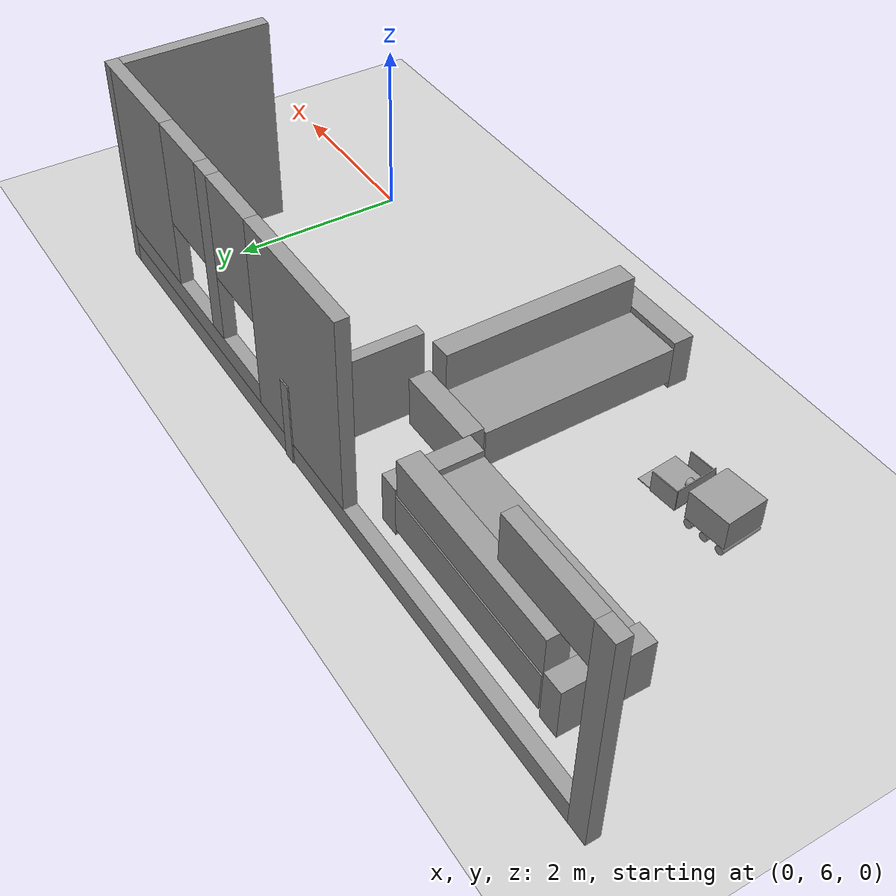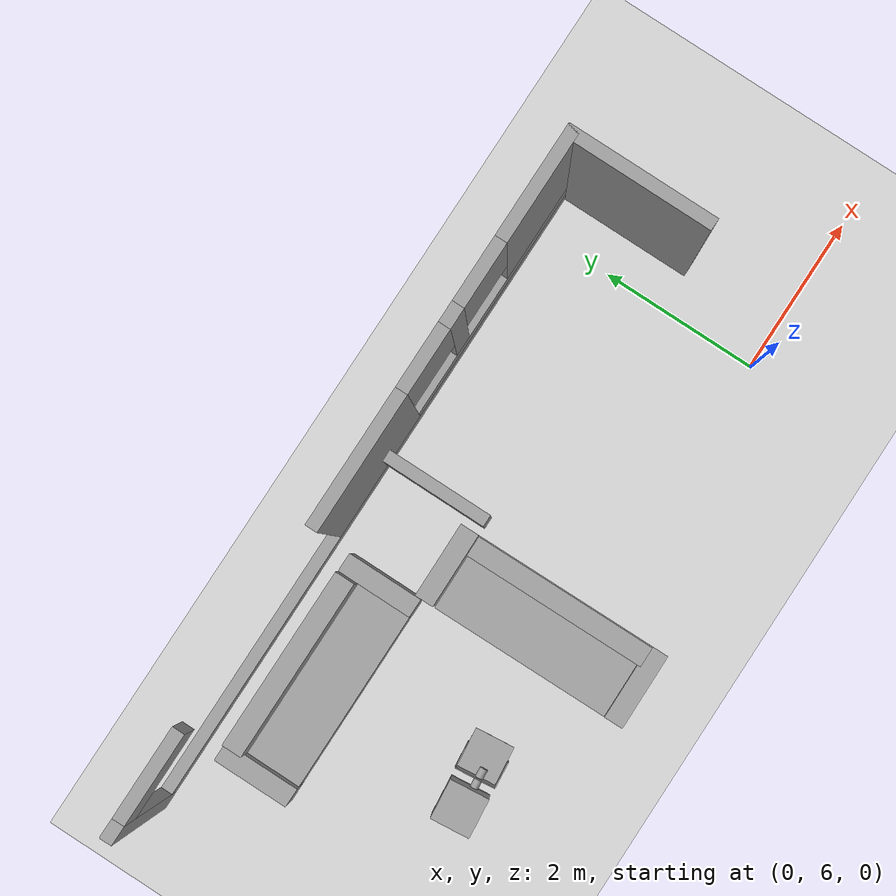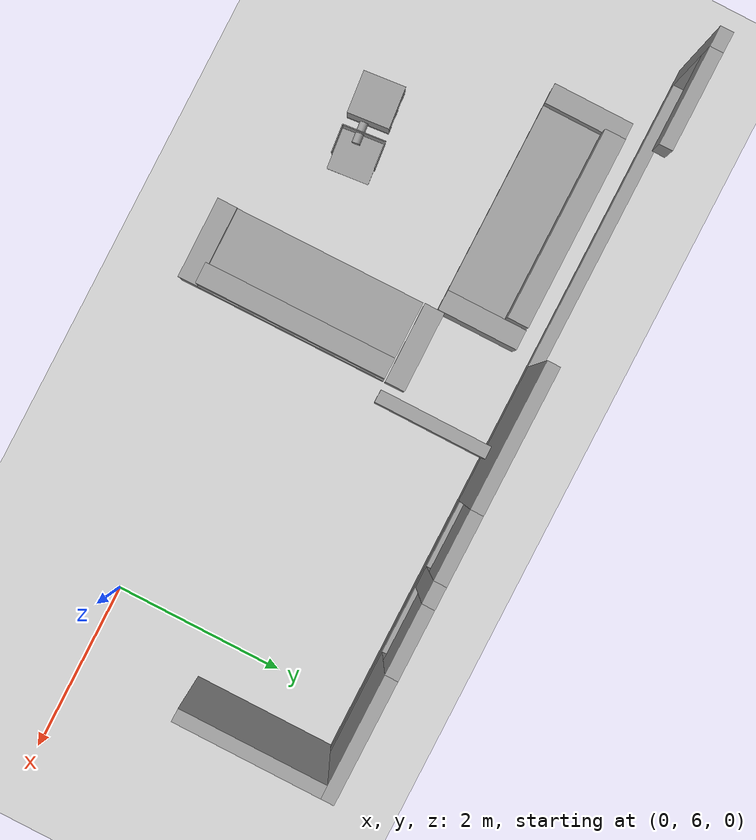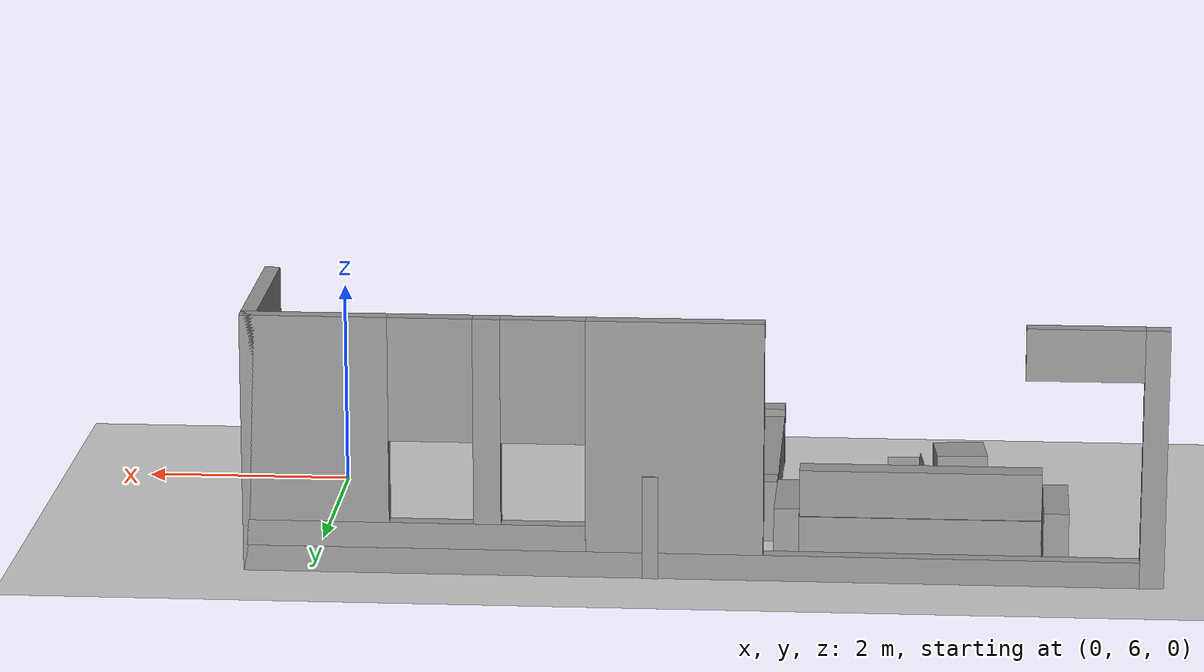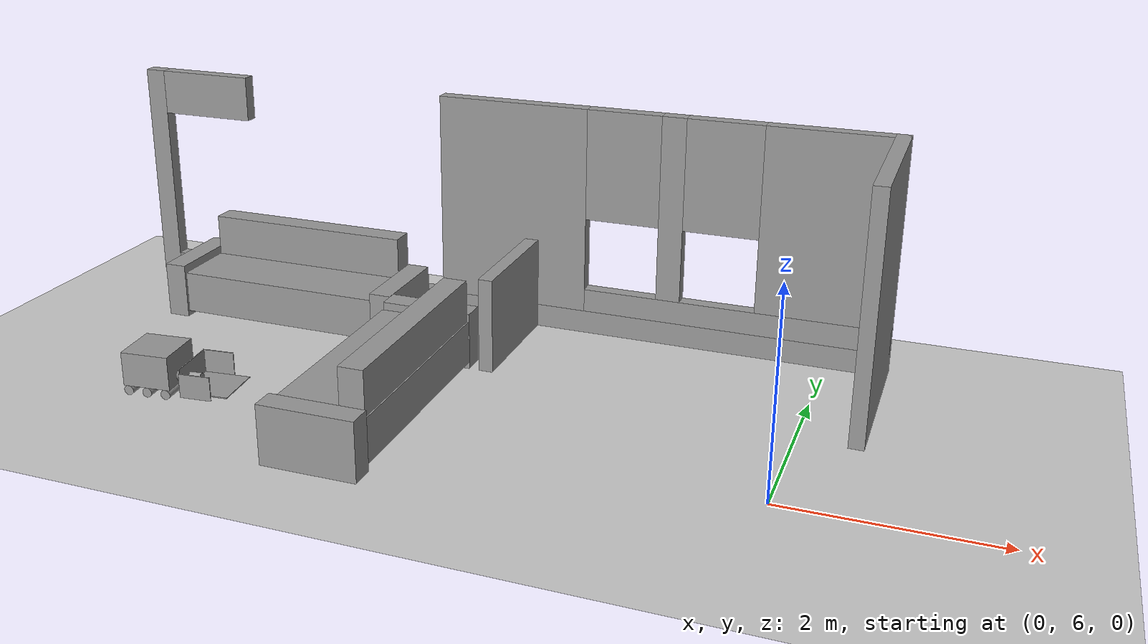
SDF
<sdf version="1.6">
 <world name="default">
  <model name="ground_plane">
   <static>1</static>
   <link name="link">
    <collision name="collision">
     <geometry><plane><normal>0 0 1</normal><size>100 100</size></plane></geometry>
     <surface><friction><ode><mu>100</mu><mu2>50</mu2></ode></friction></surface>
    </collision>
    <visual name="visual">
     <cast_shadows>0</cast_shadows>
     <geometry><plane><normal>0 0 1</normal><size>100 100</size></plane></geometry>
     <material>
      <script><uri>file://media/materials/scripts/gazebo.material</uri><name>Gazebo/Grey</name></script>
     </material>
    </visual>
   </link>
  </model>
  <model name="MDP-Home">
   <pose>0.766606 1.22436 0 0 -0 0</pose>
   <link name="Wall_15">
    <pose>-4.47995 7.76656 0 0 -0 0</pose>
    <visual name="Wall_15_Visual_0">
     <pose>-4.22794 0 1.25 0 -0 0</pose>
     <geometry><box><size>0.231123 0.15 2.5</size></box></geometry>
     <material>
      <script><uri>file://media/materials/scripts/gazebo.material</uri><name>Gazebo/Grey</name></script>
      <ambient>1 1 1 1</ambient>
     </material>
     <meta><layer>0</layer></meta>
    </visual>
    <collision name="Wall_15_Collision_0">
     <geometry><box><size>0.231123 0.15 2.5</size></box></geometry>
     <pose>-4.22794 0 1.25 0 -0 0</pose>
    </collision>
    <visual name="Wall_15_Visual_1">
     <pose>0.115562 0 0.125 0 -0 0</pose>
     <geometry><box><size>8.45588 0.15 0.25</size></box></geometry>
     <material>
      <script><uri>file://media/materials/scripts/gazebo.material</uri><name>Gazebo/Grey</name></script>
      <ambient>1 1 1 1</ambient>
     </material>
     <meta><layer>0</layer></meta>
    </visual>
    <collision name="Wall_15_Collision_1">
     <geometry><box><size>8.45588 0.15 0.25</size></box></geometry>
     <pose>0.115562 0 0.125 0 -0 0</pose>
    </collision>
    <visual name="Wall_15_Visual_2">
     <pose>0.254395 0 1.375 0 -0 0</pose>
     <geometry><box><size>1.67515 0.15 2.25</size></box></geometry>
     <material>
      <script><uri>file://media/materials/scripts/gazebo.material</uri><name>Gazebo/Grey</name></script>
      <ambient>1 1 1 1</ambient>
     </material>
     <meta><layer>0</layer></meta>
    </visual>
    <collision name="Wall_15_Collision_2">
     <geometry><box><size>1.67515 0.15 2.25</size></box></geometry>
     <pose>0.254395 0 1.375 0 -0 0</pose>
    </collision>
    <visual name="Wall_15_Visual_3">
     <pose>2.71774 0 0.375 0 -0 0</pose>
     <geometry><box><size>3.25153 0.15 0.25</size></box></geometry>
     <material>
      <script><uri>file://media/materials/scripts/gazebo.material</uri><name>Gazebo/Grey</name></script>
      <ambient>1 1 1 1</ambient>
     </material>
     <meta><layer>0</layer></meta>
    </visual>
    <collision name="Wall_15_Collision_3">
     <geometry><box><size>3.25153 0.15 0.25</size></box></geometry>
     <pose>2.71774 0 0.375 0 -0 0</pose>
    </collision>
    <visual name="Wall_15_Visual_4">
     <pose>2.02118 0 1.5 0 -0 0</pose>
     <geometry><box><size>0.258412 0.15 2</size></box></geometry>
     <material>
      <script><uri>file://media/materials/scripts/gazebo.material</uri><name>Gazebo/Grey</name></script>
      <ambient>1 1 1 1</ambient>
     </material>
     <meta><layer>0</layer></meta>
    </visual>
    <collision name="Wall_15_Collision_4">
     <geometry><box><size>0.258412 0.15 2</size></box></geometry>
     <pose>2.02118 0 1.5 0 -0 0</pose>
    </collision>
    <visual name="Wall_15_Visual_5">
     <pose>3.64694 0 1.5 0 -0 0</pose>
     <geometry><box><size>1.39312 0.15 2</size></box></geometry>
     <material>
      <script><uri>file://media/materials/scripts/gazebo.material</uri><name>Gazebo/Grey</name></script>
      <ambient>1 1 1 1</ambient>
     </material>
     <meta><layer>0</layer></meta>
    </visual>
    <collision name="Wall_15_Collision_5">
     <geometry><box><size>1.39312 0.15 2</size></box></geometry>
     <pose>3.64694 0 1.5 0 -0 0</pose>
    </collision>
    <visual name="Wall_15_Visual_6">
     <pose>1.49197 0 1.9 0 -0 0</pose>
     <geometry><box><size>0.8 0.15 1.2</size></box></geometry>
     <material>
      <script><uri>file://media/materials/scripts/gazebo.material</uri><name>Gazebo/Grey</name></script>
      <ambient>1 1 1 1</ambient>
     </material>
     <meta><layer>0</layer></meta>
    </visual>
    <collision name="Wall_15_Collision_6">
     <geometry><box><size>0.8 0.15 1.2</size></box></geometry>
     <pose>1.49197 0 1.9 0 -0 0</pose>
    </collision>
    <visual name="Wall_15_Visual_7">
     <pose>2.55038 0 1.9 0 -0 0</pose>
     <geometry><box><size>0.8 0.15 1.2</size></box></geometry>
     <material>
      <script><uri>file://media/materials/scripts/gazebo.material</uri><name>Gazebo/Grey</name></script>
      <ambient>1 1 1 1</ambient>
     </material>
     <meta><layer>0</layer></meta>
    </visual>
    <collision name="Wall_15_Collision_7">
     <geometry><box><size>0.8 0.15 1.2</size></box></geometry>
     <pose>2.55038 0 1.9 0 -0 0</pose>
    </collision>
    <visual name="Wall_15_Visual_8">
     <pose>-3.56212 0 2.25 0 -0 0</pose>
     <geometry><box><size>1.10051 0.15 0.5</size></box></geometry>
     <material>
      <script><uri>file://media/materials/scripts/gazebo.material</uri><name>Gazebo/Grey</name></script>
      <ambient>1 1 1 1</ambient>
     </material>
     <meta><layer>0</layer></meta>
    </visual>
    <collision name="Wall_15_Collision_8">
     <geometry><box><size>1.10051 0.15 0.5</size></box></geometry>
     <pose>-3.56212 0 2.25 0 -0 0</pose>
    </collision>
   </link>
   <link name="Wall_158">
    <collision name="Wall_158_Collision">
     <geometry><box><size>1.5 0.15 1</size></box></geometry>
     <pose>0 0 0.5 0 -0 0</pose>
    </collision>
    <visual name="Wall_158_Visual">
     <pose>0 0 0.5 0 -0 0</pose>
     <geometry><box><size>1.5 0.15 1</size></box></geometry>
     <material>
      <script><uri>file://media/materials/scripts/gazebo.material</uri><name>Gazebo/Grey</name></script>
      <ambient>1 1 1 1</ambient>
     </material>
     <meta><layer>0</layer></meta>
    </visual>
    <pose>-3.99789 7.10564 0 0 0 -1.5708</pose>
   </link>
   <link name="Wall_17">
    <collision name="Wall_17_Collision">
     <geometry><box><size>1.829 0.15 2.5</size></box></geometry>
     <pose>0 0 1.25 0 -0 0</pose>
    </collision>
    <visual name="Wall_17_Visual">
     <pose>0 0 1.25 0 -0 0</pose>
     <geometry><box><size>1.829 0.15 2.5</size></box></geometry>
     <material>
      <script><uri>file://media/materials/scripts/gazebo.material</uri><name>Gazebo/Grey</name></script>
      <ambient>1 1 1 1</ambient>
     </material>
     <meta><layer>0</layer></meta>
    </visual>
    <pose>-0.211449 6.92706 0 0 0 -1.5708</pose>
   </link>
   <static>1</static>
  </model>
  <model name="Couch_0">
   <link name="link_0">
    <pose>0.005 -0.08565 -0.1125 0 -0 0</pose>
    <inertial>
     <mass>1</mass>
     <inertia>
      <ixx>0.166667</ixx>
      <ixy>0</ixy>
      <ixz>0</ixz>
      <iyy>0.166667</iyy>
      <iyz>0</iyz>
      <izz>0.166667</izz>
     </inertia>
    </inertial>
    <visual name="visual">
     <geometry><box><size>2.286 0.9652 0.45</size></box></geometry>
     <material>
      <lighting>1</lighting>
      <script><uri>file://media/materials/scripts/gazebo.material</uri><name>Gazebo/Grey</name></script>
      <shader type="pixel"><normal_map>__default__</normal_map></shader>
      <ambient>0.3 0.3 0.3 1</ambient>
      <diffuse>0.7 0.7 0.7 1</diffuse>
      <specular>0.01 0.01 0.01 1</specular>
      <emissive>0 0 0 1</emissive>
     </material>
    </visual>
    <collision name="collision">
     <geometry><box><size>2.286 0.9652 0.45</size></box></geometry>
     <surface>
      <friction>
       <ode><mu>1</mu><mu2>1</mu2><fdir1>0 0 0</fdir1><slip1>0</slip1><slip2>0</slip2></ode>
       <torsional>
        <coefficient>1</coefficient>
        <patch_radius>0</patch_radius>
        <surface_radius>0</surface_radius>
        <use_patch_radius>1</use_patch_radius>
        <ode><slip>0</slip></ode>
       </torsional>
      </friction>
      <bounce><restitution_coefficient>0</restitution_coefficient><threshold>1e+06</threshold></bounce>
      <contact>
       <collide_without_contact>0</collide_without_contact>
       <collide_without_contact_bitmask>1</collide_without_contact_bitmask>
       <collide_bitmask>1</collide_bitmask>
       <ode>
        <soft_cfm>0</soft_cfm>
        <soft_erp>0.2</soft_erp>
        <kp>1e+13</kp>
        <kd>1</kd>
        <max_vel>0.01</max_vel>
        <min_depth>0</min_depth>
       </ode>
       <bullet>
        <split_impulse>1</split_impulse>
        <split_impulse_penetration_threshold>-0.01</split_impulse_penetration_threshold>
        <soft_cfm>0</soft_cfm>
        <soft_erp>0.2</soft_erp>
        <kp>1e+13</kp>
        <kd>1</kd>
       </bullet>
      </contact>
     </surface>
    </collision>
   </link>
   <link name="link_1">
    <pose>-1.278 -0.08565 -0.1125 0 -0 0</pose>
    <inertial>
     <mass>1</mass>
     <inertia>
      <ixx>0.166667</ixx>
      <ixy>0</ixy>
      <ixz>0</ixz>
      <iyy>0.166667</iyy>
      <iyz>0</iyz>
      <izz>0.166667</izz>
     </inertia>
    </inertial>
    <visual name="visual">
     <geometry><box><size>0.24 0.9652 0.6</size></box></geometry>
     <material>
      <lighting>1</lighting>
      <script><uri>file://media/materials/scripts/gazebo.material</uri><name>Gazebo/Grey</name></script>
      <shader type="pixel"><normal_map>__default__</normal_map></shader>
      <ambient>0.3 0.3 0.3 1</ambient>
      <diffuse>0.7 0.7 0.7 1</diffuse>
      <specular>0.01 0.01 0.01 1</specular>
      <emissive>0 0 0 1</emissive>
     </material>
    </visual>
    <collision name="collision">
     <geometry><box><size>0.24 0.9652 0.6</size></box></geometry>
     <surface>
      <friction>
       <ode><mu>1</mu><mu2>1</mu2><fdir1>0 0 0</fdir1><slip1>0</slip1><slip2>0</slip2></ode>
       <torsional>
        <coefficient>1</coefficient>
        <patch_radius>0</patch_radius>
        <surface_radius>0</surface_radius>
        <use_patch_radius>1</use_patch_radius>
        <ode><slip>0</slip></ode>
       </torsional>
      </friction>
      <bounce><restitution_coefficient>0</restitution_coefficient><threshold>1e+06</threshold></bounce>
      <contact>
       <collide_without_contact>0</collide_without_contact>
       <collide_without_contact_bitmask>1</collide_without_contact_bitmask>
       <collide_bitmask>1</collide_bitmask>
       <ode>
        <soft_cfm>0</soft_cfm>
        <soft_erp>0.2</soft_erp>
        <kp>1e+13</kp>
        <kd>1</kd>
        <max_vel>0.01</max_vel>
        <min_depth>0</min_depth>
       </ode>
       <bullet>
        <split_impulse>1</split_impulse>
        <split_impulse_penetration_threshold>-0.01</split_impulse_penetration_threshold>
        <soft_cfm>0</soft_cfm>
        <soft_erp>0.2</soft_erp>
        <kp>1e+13</kp>
        <kd>1</kd>
       </bullet>
      </contact>
     </surface>
    </collision>
   </link>
   <link name="link_1_clone">
    <pose>1.268 -0.08565 -0.1125 0 -0 0</pose>
    <inertial>
     <mass>1</mass>
     <inertia>
      <ixx>0.166667</ixx>
      <ixy>0</ixy>
      <ixz>0</ixz>
      <iyy>0.166667</iyy>
      <iyz>0</iyz>
      <izz>0.166667</izz>
     </inertia>
    </inertial>
    <visual name="visual">
     <geometry><box><size>0.24 0.9652 0.6</size></box></geometry>
     <material>
      <lighting>1</lighting>
      <script><uri>file://media/materials/scripts/gazebo.material</uri><name>Gazebo/Grey</name></script>
      <shader type="pixel"><normal_map>__default__</normal_map></shader>
      <ambient>0.3 0.3 0.3 1</ambient>
      <diffuse>0.7 0.7 0.7 1</diffuse>
      <specular>0.01 0.01 0.01 1</specular>
      <emissive>0 0 0 1</emissive>
     </material>
    </visual>
    <collision name="collision">
     <geometry><box><size>0.24 0.9652 0.6</size></box></geometry>
     <surface>
      <friction>
       <ode><mu>1</mu><mu2>1</mu2><fdir1>0 0 0</fdir1><slip1>0</slip1><slip2>0</slip2></ode>
       <torsional>
        <coefficient>1</coefficient>
        <patch_radius>0</patch_radius>
        <surface_radius>0</surface_radius>
        <use_patch_radius>1</use_patch_radius>
        <ode><slip>0</slip></ode>
       </torsional>
      </friction>
      <bounce><restitution_coefficient>0</restitution_coefficient><threshold>1e+06</threshold></bounce>
      <contact>
       <collide_without_contact>0</collide_without_contact>
       <collide_without_contact_bitmask>1</collide_without_contact_bitmask>
       <collide_bitmask>1</collide_bitmask>
       <ode>
        <soft_cfm>0</soft_cfm>
        <soft_erp>0.2</soft_erp>
        <kp>1e+13</kp>
        <kd>1</kd>
        <max_vel>0.01</max_vel>
        <min_depth>0</min_depth>
       </ode>
       <bullet>
        <split_impulse>1</split_impulse>
        <split_impulse_penetration_threshold>-0.01</split_impulse_penetration_threshold>
        <soft_cfm>0</soft_cfm>
        <soft_erp>0.2</soft_erp>
        <kp>1e+13</kp>
        <kd>1</kd>
       </bullet>
      </contact>
     </surface>
    </collision>
   </link>
   <link name="link_2">
    <pose>0.005 0.25695 0.3375 0 -0 0</pose>
    <inertial>
     <mass>1</mass>
     <inertia>
      <ixx>0.166667</ixx>
      <ixy>0</ixy>
      <ixz>0</ixz>
      <iyy>0.166667</iyy>
      <iyz>0</iyz>
      <izz>0.166667</izz>
     </inertia>
    </inertial>
    <visual name="visual">
     <geometry><box><size>2.286 0.25 0.45</size></box></geometry>
     <material>
      <lighting>1</lighting>
      <script><uri>file://media/materials/scripts/gazebo.material</uri><name>Gazebo/Grey</name></script>
      <shader type="pixel"><normal_map>__default__</normal_map></shader>
      <ambient>0.3 0.3 0.3 1</ambient>
      <diffuse>0.7 0.7 0.7 1</diffuse>
      <specular>0.01 0.01 0.01 1</specular>
      <emissive>0 0 0 1</emissive>
     </material>
    </visual>
    <collision name="collision">
     <geometry><box><size>2.286 0.25 0.45</size></box></geometry>
     <surface>
      <friction>
       <ode><mu>1</mu><mu2>1</mu2><fdir1>0 0 0</fdir1><slip1>0</slip1><slip2>0</slip2></ode>
       <torsional>
        <coefficient>1</coefficient>
        <patch_radius>0</patch_radius>
        <surface_radius>0</surface_radius>
        <use_patch_radius>1</use_patch_radius>
        <ode><slip>0</slip></ode>
       </torsional>
      </friction>
      <bounce><restitution_coefficient>0</restitution_coefficient><threshold>1e+06</threshold></bounce>
      <contact>
       <collide_without_contact>0</collide_without_contact>
       <collide_without_contact_bitmask>1</collide_without_contact_bitmask>
       <collide_bitmask>1</collide_bitmask>
       <ode>
        <soft_cfm>0</soft_cfm>
        <soft_erp>0.2</soft_erp>
        <kp>1e+13</kp>
        <kd>1</kd>
        <max_vel>0.01</max_vel>
        <min_depth>0</min_depth>
       </ode>
       <bullet>
        <split_impulse>1</split_impulse>
        <split_impulse_penetration_threshold>-0.01</split_impulse_penetration_threshold>
        <soft_cfm>0</soft_cfm>
        <soft_erp>0.2</soft_erp>
        <kp>1e+13</kp>
        <kd>1</kd>
       </bullet>
      </contact>
     </surface>
    </collision>
   </link>
   <joint name="link_0_JOINT_0" type="revolute">
    <parent>link_0</parent>
    <child>link_1</child>
    <axis>
     <xyz>0 1 0</xyz>
     <use_parent_model_frame>0</use_parent_model_frame>
     <limit>
      <lower>-1.79769e+308</lower>
      <upper>1.79769e+308</upper>
      <effort>-1</effort>
      <velocity>-1</velocity>
     </limit>
     <dynamics>
      <spring_reference>0</spring_reference>
      <spring_stiffness>0</spring_stiffness>
      <damping>0</damping>
     </dynamics>
    </axis>
    <physics>
     <ode><limit><cfm>0</cfm><erp>0.2</erp></limit><suspension><cfm>0</cfm><erp>0.2</erp></suspension></ode>
    </physics>
   </joint>
   <joint name="link_0_JOINT_1" type="revolute">
    <parent>link_0</parent>
    <child>link_1_clone</child>
    <axis>
     <xyz>0 1 0</xyz>
     <use_parent_model_frame>0</use_parent_model_frame>
     <limit>
      <lower>-1.79769e+308</lower>
      <upper>1.79769e+308</upper>
      <effort>-1</effort>
      <velocity>-1</velocity>
     </limit>
     <dynamics>
      <spring_reference>0</spring_reference>
      <spring_stiffness>0</spring_stiffness>
      <damping>0</damping>
     </dynamics>
    </axis>
    <physics>
     <ode><limit><cfm>0</cfm><erp>0.2</erp></limit><suspension><cfm>0</cfm><erp>0.2</erp></suspension></ode>
    </physics>
   </joint>
   <joint name="link_0_JOINT_2" type="revolute">
    <parent>link_0</parent>
    <child>link_2</child>
    <axis>
     <xyz>1 0 0</xyz>
     <use_parent_model_frame>0</use_parent_model_frame>
     <limit>
      <lower>-1.79769e+308</lower>
      <upper>1.79769e+308</upper>
      <effort>-1</effort>
      <velocity>-1</velocity>
     </limit>
     <dynamics>
      <spring_reference>0</spring_reference>
      <spring_stiffness>0</spring_stiffness>
      <damping>0</damping>
     </dynamics>
    </axis>
    <physics>
     <ode><limit><cfm>0</cfm><erp>0.2</erp></limit><suspension><cfm>0</cfm><erp>0.2</erp></suspension></ode>
    </physics>
   </joint>
   <static>0</static>
   <pose>-5.76863 8.30056 0.4125 -2e-06 1e-06 0.000183</pose>
  </model>
  <model name="Couch_1">
   <link name="link_0">
    <pose>0.005 -0.08565 -0.1125 0 -0 0</pose>
    <inertial>
     <mass>1</mass>
     <inertia>
      <ixx>0.166667</ixx>
      <ixy>0</ixy>
      <ixz>0</ixz>
      <iyy>0.166667</iyy>
      <iyz>0</iyz>
      <izz>0.166667</izz>
     </inertia>
    </inertial>
    <visual name="visual">
     <geometry><box><size>2.286 0.9652 0.45</size></box></geometry>
     <material>
      <lighting>1</lighting>
      <script><uri>file://media/materials/scripts/gazebo.material</uri><name>Gazebo/Grey</name></script>
      <shader type="pixel"><normal_map>__default__</normal_map></shader>
      <ambient>0.3 0.3 0.3 1</ambient>
      <diffuse>0.7 0.7 0.7 1</diffuse>
      <specular>0.01 0.01 0.01 1</specular>
      <emissive>0 0 0 1</emissive>
     </material>
    </visual>
    <collision name="collision">
     <geometry><box><size>2.286 0.9652 0.45</size></box></geometry>
     <surface>
      <friction>
       <ode><mu>1</mu><mu2>1</mu2><fdir1>0 0 0</fdir1><slip1>0</slip1><slip2>0</slip2></ode>
       <torsional>
        <coefficient>1</coefficient>
        <patch_radius>0</patch_radius>
        <surface_radius>0</surface_radius>
        <use_patch_radius>1</use_patch_radius>
        <ode><slip>0</slip></ode>
       </torsional>
      </friction>
      <bounce><restitution_coefficient>0</restitution_coefficient><threshold>1e+06</threshold></bounce>
      <contact>
       <collide_without_contact>0</collide_without_contact>
       <collide_without_contact_bitmask>1</collide_without_contact_bitmask>
       <collide_bitmask>1</collide_bitmask>
       <ode>
        <soft_cfm>0</soft_cfm>
        <soft_erp>0.2</soft_erp>
        <kp>1e+13</kp>
        <kd>1</kd>
        <max_vel>0.01</max_vel>
        <min_depth>0</min_depth>
       </ode>
       <bullet>
        <split_impulse>1</split_impulse>
        <split_impulse_penetration_threshold>-0.01</split_impulse_penetration_threshold>
        <soft_cfm>0</soft_cfm>
        <soft_erp>0.2</soft_erp>
        <kp>1e+13</kp>
        <kd>1</kd>
       </bullet>
      </contact>
     </surface>
    </collision>
   </link>
   <link name="link_1">
    <pose>-1.278 -0.08565 -0.1125 0 -0 0</pose>
    <inertial>
     <mass>1</mass>
     <inertia>
      <ixx>0.166667</ixx>
      <ixy>0</ixy>
      <ixz>0</ixz>
      <iyy>0.166667</iyy>
      <iyz>0</iyz>
      <izz>0.166667</izz>
     </inertia>
    </inertial>
    <visual name="visual">
     <geometry><box><size>0.24 0.9652 0.6</size></box></geometry>
     <material>
      <lighting>1</lighting>
      <script><uri>file://media/materials/scripts/gazebo.material</uri><name>Gazebo/Grey</name></script>
      <shader type="pixel"><normal_map>__default__</normal_map></shader>
      <ambient>0.3 0.3 0.3 1</ambient>
      <diffuse>0.7 0.7 0.7 1</diffuse>
      <specular>0.01 0.01 0.01 1</specular>
      <emissive>0 0 0 1</emissive>
     </material>
    </visual>
    <collision name="collision">
     <geometry><box><size>0.24 0.9652 0.6</size></box></geometry>
     <surface>
      <friction>
       <ode><mu>1</mu><mu2>1</mu2><fdir1>0 0 0</fdir1><slip1>0</slip1><slip2>0</slip2></ode>
       <torsional>
        <coefficient>1</coefficient>
        <patch_radius>0</patch_radius>
        <surface_radius>0</surface_radius>
        <use_patch_radius>1</use_patch_radius>
        <ode><slip>0</slip></ode>
       </torsional>
      </friction>
      <bounce><restitution_coefficient>0</restitution_coefficient><threshold>1e+06</threshold></bounce>
      <contact>
       <collide_without_contact>0</collide_without_contact>
       <collide_without_contact_bitmask>1</collide_without_contact_bitmask>
       <collide_bitmask>1</collide_bitmask>
       <ode>
        <soft_cfm>0</soft_cfm>
        <soft_erp>0.2</soft_erp>
        <kp>1e+13</kp>
        <kd>1</kd>
        <max_vel>0.01</max_vel>
        <min_depth>0</min_depth>
       </ode>
       <bullet>
        <split_impulse>1</split_impulse>
        <split_impulse_penetration_threshold>-0.01</split_impulse_penetration_threshold>
        <soft_cfm>0</soft_cfm>
        <soft_erp>0.2</soft_erp>
        <kp>1e+13</kp>
        <kd>1</kd>
       </bullet>
      </contact>
     </surface>
    </collision>
   </link>
   <link name="link_1_clone">
    <pose>1.268 -0.08565 -0.1125 0 -0 0</pose>
    <inertial>
     <mass>1</mass>
     <inertia>
      <ixx>0.166667</ixx>
      <ixy>0</ixy>
      <ixz>0</ixz>
      <iyy>0.166667</iyy>
      <iyz>0</iyz>
      <izz>0.166667</izz>
     </inertia>
    </inertial>
    <visual name="visual">
     <geometry><box><size>0.24 0.9652 0.6</size></box></geometry>
     <material>
      <lighting>1</lighting>
      <script><uri>file://media/materials/scripts/gazebo.material</uri><name>Gazebo/Grey</name></script>
      <shader type="pixel"><normal_map>__default__</normal_map></shader>
      <ambient>0.3 0.3 0.3 1</ambient>
      <diffuse>0.7 0.7 0.7 1</diffuse>
      <specular>0.01 0.01 0.01 1</specular>
      <emissive>0 0 0 1</emissive>
     </material>
    </visual>
    <collision name="collision">
     <geometry><box><size>0.24 0.9652 0.6</size></box></geometry>
     <surface>
      <friction>
       <ode><mu>1</mu><mu2>1</mu2><fdir1>0 0 0</fdir1><slip1>0</slip1><slip2>0</slip2></ode>
       <torsional>
        <coefficient>1</coefficient>
        <patch_radius>0</patch_radius>
        <surface_radius>0</surface_radius>
        <use_patch_radius>1</use_patch_radius>
        <ode><slip>0</slip></ode>
       </torsional>
      </friction>
      <bounce><restitution_coefficient>0</restitution_coefficient><threshold>1e+06</threshold></bounce>
      <contact>
       <collide_without_contact>0</collide_without_contact>
       <collide_without_contact_bitmask>1</collide_without_contact_bitmask>
       <collide_bitmask>1</collide_bitmask>
       <ode>
        <soft_cfm>0</soft_cfm>
        <soft_erp>0.2</soft_erp>
        <kp>1e+13</kp>
        <kd>1</kd>
        <max_vel>0.01</max_vel>
        <min_depth>0</min_depth>
       </ode>
       <bullet>
        <split_impulse>1</split_impulse>
        <split_impulse_penetration_threshold>-0.01</split_impulse_penetration_threshold>
        <soft_cfm>0</soft_cfm>
        <soft_erp>0.2</soft_erp>
        <kp>1e+13</kp>
        <kd>1</kd>
       </bullet>
      </contact>
     </surface>
    </collision>
   </link>
   <link name="link_2">
    <pose>0.005 0.25695 0.3375 0 -0 0</pose>
    <inertial>
     <mass>1</mass>
     <inertia>
      <ixx>0.166667</ixx>
      <ixy>0</ixy>
      <ixz>0</ixz>
      <iyy>0.166667</iyy>
      <iyz>0</iyz>
      <izz>0.166667</izz>
     </inertia>
    </inertial>
    <visual name="visual">
     <geometry><box><size>2.286 0.25 0.45</size></box></geometry>
     <material>
      <lighting>1</lighting>
      <script><uri>file://media/materials/scripts/gazebo.material</uri><name>Gazebo/Grey</name></script>
      <shader type="pixel"><normal_map>__default__</normal_map></shader>
      <ambient>0.3 0.3 0.3 1</ambient>
      <diffuse>0.7 0.7 0.7 1</diffuse>
      <specular>0.01 0.01 0.01 1</specular>
      <emissive>0 0 0 1</emissive>
     </material>
    </visual>
    <collision name="collision">
     <geometry><box><size>2.286 0.25 0.45</size></box></geometry>
     <surface>
      <friction>
       <ode><mu>1</mu><mu2>1</mu2><fdir1>0 0 0</fdir1><slip1>0</slip1><slip2>0</slip2></ode>
       <torsional>
        <coefficient>1</coefficient>
        <patch_radius>0</patch_radius>
        <surface_radius>0</surface_radius>
        <use_patch_radius>1</use_patch_radius>
        <ode><slip>0</slip></ode>
       </torsional>
      </friction>
      <bounce><restitution_coefficient>0</restitution_coefficient><threshold>1e+06</threshold></bounce>
      <contact>
       <collide_without_contact>0</collide_without_contact>
       <collide_without_contact_bitmask>1</collide_without_contact_bitmask>
       <collide_bitmask>1</collide_bitmask>
       <ode>
        <soft_cfm>0</soft_cfm>
        <soft_erp>0.2</soft_erp>
        <kp>1e+13</kp>
        <kd>1</kd>
        <max_vel>0.01</max_vel>
        <min_depth>0</min_depth>
       </ode>
       <bullet>
        <split_impulse>1</split_impulse>
        <split_impulse_penetration_threshold>-0.01</split_impulse_penetration_threshold>
        <soft_cfm>0</soft_cfm>
        <soft_erp>0.2</soft_erp>
        <kp>1e+13</kp>
        <kd>1</kd>
       </bullet>
      </contact>
     </surface>
    </collision>
   </link>
   <joint name="link_0_JOINT_0" type="revolute">
    <parent>link_0</parent>
    <child>link_1</child>
    <axis>
     <xyz>0 1 0</xyz>
     <use_parent_model_frame>0</use_parent_model_frame>
     <limit>
      <lower>-1.79769e+308</lower>
      <upper>1.79769e+308</upper>
      <effort>-1</effort>
      <velocity>-1</velocity>
     </limit>
     <dynamics>
      <spring_reference>0</spring_reference>
      <spring_stiffness>0</spring_stiffness>
      <damping>0</damping>
     </dynamics>
    </axis>
    <physics>
     <ode><limit><cfm>0</cfm><erp>0.2</erp></limit><suspension><cfm>0</cfm><erp>0.2</erp></suspension></ode>
    </physics>
   </joint>
   <joint name="link_0_JOINT_1" type="revolute">
    <parent>link_0</parent>
    <child>link_1_clone</child>
    <axis>
     <xyz>0 1 0</xyz>
     <use_parent_model_frame>0</use_parent_model_frame>
     <limit>
      <lower>-1.79769e+308</lower>
      <upper>1.79769e+308</upper>
      <effort>-1</effort>
      <velocity>-1</velocity>
     </limit>
     <dynamics>
      <spring_reference>0</spring_reference>
      <spring_stiffness>0</spring_stiffness>
      <damping>0</damping>
     </dynamics>
    </axis>
    <physics>
     <ode><limit><cfm>0</cfm><erp>0.2</erp></limit><suspension><cfm>0</cfm><erp>0.2</erp></suspension></ode>
    </physics>
   </joint>
   <joint name="link_0_JOINT_2" type="revolute">
    <parent>link_0</parent>
    <child>link_2</child>
    <axis>
     <xyz>1 0 0</xyz>
     <use_parent_model_frame>0</use_parent_model_frame>
     <limit>
      <lower>-1.79769e+308</lower>
      <upper>1.79769e+308</upper>
      <effort>-1</effort>
      <velocity>-1</velocity>
     </limit>
     <dynamics>
      <spring_reference>0</spring_reference>
      <spring_stiffness>0</spring_stiffness>
      <damping>0</damping>
     </dynamics>
    </axis>
    <physics>
     <ode><limit><cfm>0</cfm><erp>0.2</erp></limit><suspension><cfm>0</cfm><erp>0.2</erp></suspension></ode>
    </physics>
   </joint>
   <static>0</static>
   <pose>-3.79861 6.42012 0.4125 0 0 -1.5634</pose>
  </model>
  <model name="Lifter_0">
   <link name="link_0">
    <pose>-0.270445 0.004778 0.040055 0 -0 0</pose>
    <inertial>
     <mass>1</mass>
     <inertia>
      <ixx>0.166667</ixx>
      <ixy>0</ixy>
      <ixz>0</ixz>
      <iyy>0.166667</iyy>
      <iyz>0</iyz>
      <izz>0.166667</izz>
     </inertia>
    </inertial>
    <visual name="visual">
     <pose>0 0 0.1 0 -0 0</pose>
     <geometry><box><size>0.5 0.5 0.35</size></box></geometry>
     <material>
      <lighting>1</lighting>
      <script><uri>file://media/materials/scripts/gazebo.material</uri><name>Gazebo/Grey</name></script>
      <shader type="pixel"><normal_map>__default__</normal_map></shader>
      <ambient>0.3 0.3 0.3 1</ambient>
      <diffuse>0.7 0.7 0.7 1</diffuse>
      <specular>0.01 0.01 0.01 1</specular>
      <emissive>0 0 0 1</emissive>
     </material>
    </visual>
    <collision name="collision">
     <geometry><box><size>0.5 0.5 0.35</size></box></geometry>
     <surface>
      <friction>
       <ode><mu>1</mu><mu2>1</mu2><fdir1>0 0 0</fdir1><slip1>0</slip1><slip2>0</slip2></ode>
       <torsional>
        <coefficient>1</coefficient>
        <patch_radius>0</patch_radius>
        <surface_radius>0</surface_radius>
        <use_patch_radius>1</use_patch_radius>
        <ode><slip>0</slip></ode>
       </torsional>
      </friction>
      <bounce><restitution_coefficient>0</restitution_coefficient><threshold>1e+06</threshold></bounce>
      <contact>
       <collide_without_contact>0</collide_without_contact>
       <collide_without_contact_bitmask>1</collide_without_contact_bitmask>
       <collide_bitmask>1</collide_bitmask>
       <ode>
        <soft_cfm>0</soft_cfm>
        <soft_erp>0.2</soft_erp>
        <kp>1e+13</kp>
        <kd>1</kd>
        <max_vel>0.01</max_vel>
        <min_depth>0</min_depth>
       </ode>
       <bullet>
        <split_impulse>1</split_impulse>
        <split_impulse_penetration_threshold>-0.01</split_impulse_penetration_threshold>
        <soft_cfm>0</soft_cfm>
        <soft_erp>0.2</soft_erp>
        <kp>1e+13</kp>
        <kd>1</kd>
       </bullet>
      </contact>
     </surface>
    </collision>
   </link>
   <link name="link_1">
    <pose>-0.470445 0.004778 -0.084944 1.57079 -0 0</pose>
    <inertial>
     <mass>1</mass>
     <inertia><ixx>0.145833</ixx><ixy>0</ixy><ixz>0</ixz><iyy>0.145833</iyy><iyz>0</iyz><izz>0.125</izz></inertia>
    </inertial>
    <visual name="visual">
     <geometry><cylinder><radius>0.05</radius><length>0.5</length></cylinder></geometry>
     <material>
      <lighting>1</lighting>
      <script><uri>file://media/materials/scripts/gazebo.material</uri><name>Gazebo/Grey</name></script>
      <shader type="pixel"><normal_map>__default__</normal_map></shader>
      <ambient>0.3 0.3 0.3 1</ambient>
      <diffuse>0.7 0.7 0.7 1</diffuse>
      <specular>0.01 0.01 0.01 1</specular>
      <emissive>0 0 0 1</emissive>
     </material>
    </visual>
    <collision name="collision">
     <geometry><cylinder><radius>0.05</radius><length>0.5</length></cylinder></geometry>
     <surface>
      <friction>
       <ode><mu>1</mu><mu2>1</mu2><fdir1>0 0 0</fdir1><slip1>0</slip1><slip2>0</slip2></ode>
       <torsional>
        <coefficient>1</coefficient>
        <patch_radius>0</patch_radius>
        <surface_radius>0</surface_radius>
        <use_patch_radius>1</use_patch_radius>
        <ode><slip>0</slip></ode>
       </torsional>
      </friction>
      <bounce><restitution_coefficient>0</restitution_coefficient><threshold>1e+06</threshold></bounce>
      <contact>
       <collide_without_contact>0</collide_without_contact>
       <collide_without_contact_bitmask>1</collide_without_contact_bitmask>
       <collide_bitmask>1</collide_bitmask>
       <ode>
        <soft_cfm>0</soft_cfm>
        <soft_erp>0.2</soft_erp>
        <kp>1e+13</kp>
        <kd>1</kd>
        <max_vel>0.01</max_vel>
        <min_depth>0</min_depth>
       </ode>
       <bullet>
        <split_impulse>1</split_impulse>
        <split_impulse_penetration_threshold>-0.01</split_impulse_penetration_threshold>
        <soft_cfm>0</soft_cfm>
        <soft_erp>0.2</soft_erp>
        <kp>1e+13</kp>
        <kd>1</kd>
       </bullet>
      </contact>
     </surface>
    </collision>
   </link>
   <link name="link_1_clone">
    <pose>-0.270445 0.004778 -0.084944 1.57079 -0 0</pose>
    <inertial>
     <mass>1</mass>
     <inertia><ixx>0.145833</ixx><ixy>0</ixy><ixz>0</ixz><iyy>0.145833</iyy><iyz>0</iyz><izz>0.125</izz></inertia>
    </inertial>
    <visual name="visual">
     <geometry><cylinder><radius>0.05</radius><length>0.5</length></cylinder></geometry>
     <material>
      <lighting>1</lighting>
      <script><uri>file://media/materials/scripts/gazebo.material</uri><name>Gazebo/Grey</name></script>
      <shader type="pixel"><normal_map>__default__</normal_map></shader>
      <ambient>0.3 0.3 0.3 1</ambient>
      <diffuse>0.7 0.7 0.7 1</diffuse>
      <specular>0.01 0.01 0.01 1</specular>
      <emissive>0 0 0 1</emissive>
     </material>
    </visual>
    <collision name="collision">
     <geometry><cylinder><radius>0.05</radius><length>0.5</length></cylinder></geometry>
     <surface>
      <friction>
       <ode><mu>1</mu><mu2>1</mu2><fdir1>0 0 0</fdir1><slip1>0</slip1><slip2>0</slip2></ode>
       <torsional>
        <coefficient>1</coefficient>
        <patch_radius>0</patch_radius>
        <surface_radius>0</surface_radius>
        <use_patch_radius>1</use_patch_radius>
        <ode><slip>0</slip></ode>
       </torsional>
      </friction>
      <bounce><restitution_coefficient>0</restitution_coefficient><threshold>1e+06</threshold></bounce>
      <contact>
       <collide_without_contact>0</collide_without_contact>
       <collide_without_contact_bitmask>1</collide_without_contact_bitmask>
       <collide_bitmask>1</collide_bitmask>
       <ode>
        <soft_cfm>0</soft_cfm>
        <soft_erp>0.2</soft_erp>
        <kp>1e+13</kp>
        <kd>1</kd>
        <max_vel>0.01</max_vel>
        <min_depth>0</min_depth>
       </ode>
       <bullet>
        <split_impulse>1</split_impulse>
        <split_impulse_penetration_threshold>-0.01</split_impulse_penetration_threshold>
        <soft_cfm>0</soft_cfm>
        <soft_erp>0.2</soft_erp>
        <kp>1e+13</kp>
        <kd>1</kd>
       </bullet>
      </contact>
     </surface>
    </collision>
   </link>
   <link name="link_1_clone_1">
    <pose>-0.070445 0.004778 -0.084944 1.57079 -0 0</pose>
    <inertial>
     <mass>1</mass>
     <inertia><ixx>0.145833</ixx><ixy>0</ixy><ixz>0</ixz><iyy>0.145833</iyy><iyz>0</iyz><izz>0.125</izz></inertia>
    </inertial>
    <visual name="visual">
     <geometry><cylinder><radius>0.05</radius><length>0.5</length></cylinder></geometry>
     <material>
      <lighting>1</lighting>
      <script><uri>file://media/materials/scripts/gazebo.material</uri><name>Gazebo/Grey</name></script>
      <shader type="pixel"><normal_map>__default__</normal_map></shader>
      <ambient>0.3 0.3 0.3 1</ambient>
      <diffuse>0.7 0.7 0.7 1</diffuse>
      <specular>0.01 0.01 0.01 1</specular>
      <emissive>0 0 0 1</emissive>
     </material>
    </visual>
    <collision name="collision">
     <geometry><cylinder><radius>0.05</radius><length>0.5</length></cylinder></geometry>
     <surface>
      <friction>
       <ode><mu>1</mu><mu2>1</mu2><fdir1>0 0 0</fdir1><slip1>0</slip1><slip2>0</slip2></ode>
       <torsional>
        <coefficient>1</coefficient>
        <patch_radius>0</patch_radius>
        <surface_radius>0</surface_radius>
        <use_patch_radius>1</use_patch_radius>
        <ode><slip>0</slip></ode>
       </torsional>
      </friction>
      <bounce><restitution_coefficient>0</restitution_coefficient><threshold>1e+06</threshold></bounce>
      <contact>
       <collide_without_contact>0</collide_without_contact>
       <collide_without_contact_bitmask>1</collide_without_contact_bitmask>
       <collide_bitmask>1</collide_bitmask>
       <ode>
        <soft_cfm>0</soft_cfm>
        <soft_erp>0.2</soft_erp>
        <kp>1e+13</kp>
        <kd>1</kd>
        <max_vel>0.01</max_vel>
        <min_depth>0</min_depth>
       </ode>
       <bullet>
        <split_impulse>1</split_impulse>
        <split_impulse_penetration_threshold>-0.01</split_impulse_penetration_threshold>
        <soft_cfm>0</soft_cfm>
        <soft_erp>0.2</soft_erp>
        <kp>1e+13</kp>
        <kd>1</kd>
       </bullet>
      </contact>
     </surface>
    </collision>
   </link>
   <link name="link_5">
    <pose>0.104558 0.004778 0.082555 0 -0 0</pose>
    <inertial>
     <mass>1</mass>
     <inertia>
      <ixx>0.166667</ixx>
      <ixy>0</ixy>
      <ixz>0</ixz>
      <iyy>0.166667</iyy>
      <iyz>0</iyz>
      <izz>0.166667</izz>
     </inertia>
    </inertial>
    <visual name="visual">
     <geometry><box><size>0.01 0.5 0.25</size></box></geometry>
     <material>
      <lighting>1</lighting>
      <script><uri>file://media/materials/scripts/gazebo.material</uri><name>Gazebo/Grey</name></script>
      <shader type="pixel"><normal_map>__default__</normal_map></shader>
      <ambient>0.3 0.3 0.3 1</ambient>
      <diffuse>0.7 0.7 0.7 1</diffuse>
      <specular>0.01 0.01 0.01 1</specular>
      <emissive>0 0 0 1</emissive>
     </material>
    </visual>
    <collision name="collision">
     <geometry><box><size>0.01 0.5 0.25</size></box></geometry>
     <surface>
      <friction>
       <ode><mu>1</mu><mu2>1</mu2><fdir1>0 0 0</fdir1><slip1>0</slip1><slip2>0</slip2></ode>
       <torsional>
        <coefficient>1</coefficient>
        <patch_radius>0</patch_radius>
        <surface_radius>0</surface_radius>
        <use_patch_radius>1</use_patch_radius>
        <ode><slip>0</slip></ode>
       </torsional>
      </friction>
      <bounce><restitution_coefficient>0</restitution_coefficient><threshold>1e+06</threshold></bounce>
      <contact>
       <collide_without_contact>0</collide_without_contact>
       <collide_without_contact_bitmask>1</collide_without_contact_bitmask>
       <collide_bitmask>1</collide_bitmask>
       <ode>
        <soft_cfm>0</soft_cfm>
        <soft_erp>0.2</soft_erp>
        <kp>1e+13</kp>
        <kd>1</kd>
        <max_vel>0.01</max_vel>
        <min_depth>0</min_depth>
       </ode>
       <bullet>
        <split_impulse>1</split_impulse>
        <split_impulse_penetration_threshold>-0.01</split_impulse_penetration_threshold>
        <soft_cfm>0</soft_cfm>
        <soft_erp>0.2</soft_erp>
        <kp>1e+13</kp>
        <kd>1</kd>
       </bullet>
      </contact>
     </surface>
    </collision>
   </link>
   <link name="link_6">
    <pose>0.347558 0.004778 -0.035445 0 -0 0</pose>
    <inertial>
     <mass>1</mass>
     <inertia>
      <ixx>0.166667</ixx>
      <ixy>0</ixy>
      <ixz>0</ixz>
      <iyy>0.166667</iyy>
      <iyz>0</iyz>
      <izz>0.166667</izz>
     </inertia>
    </inertial>
    <visual name="visual">
     <geometry><box><size>0.5 0.5 0.01</size></box></geometry>
     <material>
      <lighting>1</lighting>
      <script><uri>file://media/materials/scripts/gazebo.material</uri><name>Gazebo/Grey</name></script>
      <shader type="pixel"><normal_map>__default__</normal_map></shader>
      <ambient>0.3 0.3 0.3 1</ambient>
      <diffuse>0.7 0.7 0.7 1</diffuse>
      <specular>0.01 0.01 0.01 1</specular>
      <emissive>0 0 0 1</emissive>
     </material>
    </visual>
    <collision name="collision">
     <geometry><box><size>0.5 0.5 0.01</size></box></geometry>
     <surface>
      <friction>
       <ode><mu>1</mu><mu2>1</mu2><fdir1>0 0 0</fdir1><slip1>0</slip1><slip2>0</slip2></ode>
       <torsional>
        <coefficient>1</coefficient>
        <patch_radius>0</patch_radius>
        <surface_radius>0</surface_radius>
        <use_patch_radius>1</use_patch_radius>
        <ode><slip>0</slip></ode>
       </torsional>
      </friction>
      <bounce><restitution_coefficient>0</restitution_coefficient><threshold>1e+06</threshold></bounce>
      <contact>
       <collide_without_contact>0</collide_without_contact>
       <collide_without_contact_bitmask>1</collide_without_contact_bitmask>
       <collide_bitmask>1</collide_bitmask>
       <ode>
        <soft_cfm>0</soft_cfm>
        <soft_erp>0.2</soft_erp>
        <kp>1e+13</kp>
        <kd>1</kd>
        <max_vel>0.01</max_vel>
        <min_depth>0</min_depth>
       </ode>
       <bullet>
        <split_impulse>1</split_impulse>
        <split_impulse_penetration_threshold>-0.01</split_impulse_penetration_threshold>
        <soft_cfm>0</soft_cfm>
        <soft_erp>0.2</soft_erp>
        <kp>1e+13</kp>
        <kd>1</kd>
       </bullet>
      </contact>
     </surface>
    </collision>
   </link>
   <link name="link_7">
    <pose>0.262558 0.261778 0.082555 0 -0 0</pose>
    <inertial>
     <mass>1</mass>
     <inertia>
      <ixx>0.166667</ixx>
      <ixy>0</ixy>
      <ixz>0</ixz>
      <iyy>0.166667</iyy>
      <iyz>0</iyz>
      <izz>0.166667</izz>
     </inertia>
    </inertial>
    <visual name="visual">
     <geometry><box><size>0.33 0.01 0.25</size></box></geometry>
     <material>
      <lighting>1</lighting>
      <script><uri>file://media/materials/scripts/gazebo.material</uri><name>Gazebo/Grey</name></script>
      <shader type="pixel"><normal_map>__default__</normal_map></shader>
      <ambient>0.3 0.3 0.3 1</ambient>
      <diffuse>0.7 0.7 0.7 1</diffuse>
      <specular>0.01 0.01 0.01 1</specular>
      <emissive>0 0 0 1</emissive>
     </material>
    </visual>
    <collision name="collision">
     <geometry><box><size>0.33 0.01 0.25</size></box></geometry>
     <surface>
      <friction>
       <ode><mu>1</mu><mu2>1</mu2><fdir1>0 0 0</fdir1><slip1>0</slip1><slip2>0</slip2></ode>
       <torsional>
        <coefficient>1</coefficient>
        <patch_radius>0</patch_radius>
        <surface_radius>0</surface_radius>
        <use_patch_radius>1</use_patch_radius>
        <ode><slip>0</slip></ode>
       </torsional>
      </friction>
      <bounce><restitution_coefficient>0</restitution_coefficient><threshold>1e+06</threshold></bounce>
      <contact>
       <collide_without_contact>0</collide_without_contact>
       <collide_without_contact_bitmask>1</collide_without_contact_bitmask>
       <collide_bitmask>1</collide_bitmask>
       <ode>
        <soft_cfm>0</soft_cfm>
        <soft_erp>0.2</soft_erp>
        <kp>1e+13</kp>
        <kd>1</kd>
        <max_vel>0.01</max_vel>
        <min_depth>0</min_depth>
       </ode>
       <bullet>
        <split_impulse>1</split_impulse>
        <split_impulse_penetration_threshold>-0.01</split_impulse_penetration_threshold>
        <soft_cfm>0</soft_cfm>
        <soft_erp>0.2</soft_erp>
        <kp>1e+13</kp>
        <kd>1</kd>
       </bullet>
      </contact>
     </surface>
    </collision>
   </link>
   <link name="link_7_clone">
    <pose>0.262558 -0.250222 0.040055 0 -0 0</pose>
    <inertial>
     <mass>1</mass>
     <inertia>
      <ixx>0.166667</ixx>
      <ixy>0</ixy>
      <ixz>0</ixz>
      <iyy>0.166667</iyy>
      <iyz>0</iyz>
      <izz>0.166667</izz>
     </inertia>
    </inertial>
    <visual name="visual">
     <geometry><box><size>0.33 0.01 0.25</size></box></geometry>
     <material>
      <lighting>1</lighting>
      <script><uri>file://media/materials/scripts/gazebo.material</uri><name>Gazebo/Grey</name></script>
      <shader type="pixel"><normal_map>__default__</normal_map></shader>
      <ambient>0.3 0.3 0.3 1</ambient>
      <diffuse>0.7 0.7 0.7 1</diffuse>
      <specular>0.01 0.01 0.01 1</specular>
      <emissive>0 0 0 1</emissive>
     </material>
    </visual>
    <collision name="collision">
     <geometry><box><size>0.33 0.01 0.25</size></box></geometry>
     <surface>
      <friction>
       <ode><mu>1</mu><mu2>1</mu2><fdir1>0 0 0</fdir1><slip1>0</slip1><slip2>0</slip2></ode>
       <torsional>
        <coefficient>1</coefficient>
        <patch_radius>0</patch_radius>
        <surface_radius>0</surface_radius>
        <use_patch_radius>1</use_patch_radius>
        <ode><slip>0</slip></ode>
       </torsional>
      </friction>
      <bounce><restitution_coefficient>0</restitution_coefficient><threshold>1e+06</threshold></bounce>
      <contact>
       <collide_without_contact>0</collide_without_contact>
       <collide_without_contact_bitmask>1</collide_without_contact_bitmask>
       <collide_bitmask>1</collide_bitmask>
       <ode>
        <soft_cfm>0</soft_cfm>
        <soft_erp>0.2</soft_erp>
        <kp>1e+13</kp>
        <kd>1</kd>
        <max_vel>0.01</max_vel>
        <min_depth>0</min_depth>
       </ode>
       <bullet>
        <split_impulse>1</split_impulse>
        <split_impulse_penetration_threshold>-0.01</split_impulse_penetration_threshold>
        <soft_cfm>0</soft_cfm>
        <soft_erp>0.2</soft_erp>
        <kp>1e+13</kp>
        <kd>1</kd>
       </bullet>
      </contact>
     </surface>
    </collision>
   </link>
   <link name="link_8">
    <pose>0.104556 -0.040222 0.045055 1.57079 -0 1.57079</pose>
    <inertial>
     <mass>1</mass>
     <inertia><ixx>0.145833</ixx><ixy>0</ixy><ixz>0</ixz><iyy>0.145833</iyy><iyz>0</iyz><izz>0.125</izz></inertia>
    </inertial>
    <visual name="visual">
     <geometry><cylinder><radius>0.05</radius><length>0.25</length></cylinder></geometry>
     <material>
      <lighting>1</lighting>
      <script><uri>file://media/materials/scripts/gazebo.material</uri><name>Gazebo/Grey</name></script>
      <shader type="pixel"><normal_map>__default__</normal_map></shader>
      <ambient>0.3 0.3 0.3 1</ambient>
      <diffuse>0.7 0.7 0.7 1</diffuse>
      <specular>0.01 0.01 0.01 1</specular>
      <emissive>0 0 0 1</emissive>
     </material>
    </visual>
    <collision name="collision">
     <geometry><cylinder><radius>0.05</radius><length>0.25</length></cylinder></geometry>
     <surface>
      <friction>
       <ode><mu>1</mu><mu2>1</mu2><fdir1>0 0 0</fdir1><slip1>0</slip1><slip2>0</slip2></ode>
       <torsional>
        <coefficient>1</coefficient>
        <patch_radius>0</patch_radius>
        <surface_radius>0</surface_radius>
        <use_patch_radius>1</use_patch_radius>
        <ode><slip>0</slip></ode>
       </torsional>
      </friction>
      <bounce><restitution_coefficient>0</restitution_coefficient><threshold>1e+06</threshold></bounce>
      <contact>
       <collide_without_contact>0</collide_without_contact>
       <collide_without_contact_bitmask>1</collide_without_contact_bitmask>
       <collide_bitmask>1</collide_bitmask>
       <ode>
        <soft_cfm>0</soft_cfm>
        <soft_erp>0.2</soft_erp>
        <kp>1e+13</kp>
        <kd>1</kd>
        <max_vel>0.01</max_vel>
        <min_depth>0</min_depth>
       </ode>
       <bullet>
        <split_impulse>1</split_impulse>
        <split_impulse_penetration_threshold>-0.01</split_impulse_penetration_threshold>
        <soft_cfm>0</soft_cfm>
        <soft_erp>0.2</soft_erp>
        <kp>1e+13</kp>
        <kd>1</kd>
       </bullet>
      </contact>
     </surface>
    </collision>
   </link>
   <joint name="link_0_JOINT_0" type="revolute">
    <parent>link_0</parent>
    <child>link_1</child>
    <axis>
     <xyz>1 0 0</xyz>
     <use_parent_model_frame>0</use_parent_model_frame>
     <limit>
      <lower>-1.79769e+308</lower>
      <upper>1.79769e+308</upper>
      <effort>-1</effort>
      <velocity>-1</velocity>
     </limit>
     <dynamics>
      <spring_reference>0</spring_reference>
      <spring_stiffness>0</spring_stiffness>
      <damping>0</damping>
     </dynamics>
    </axis>
    <physics>
     <ode><limit><cfm>0</cfm><erp>0.2</erp></limit><suspension><cfm>0</cfm><erp>0.2</erp></suspension></ode>
    </physics>
   </joint>
   <joint name="link_0_JOINT_10" type="revolute">
    <parent>link_0</parent>
    <child>link_8</child>
    <axis>
     <xyz>1 0 0</xyz>
     <use_parent_model_frame>0</use_parent_model_frame>
     <limit>
      <lower>-1.79769e+308</lower>
      <upper>1.79769e+308</upper>
      <effort>-1</effort>
      <velocity>-1</velocity>
     </limit>
     <dynamics>
      <spring_reference>0</spring_reference>
      <spring_stiffness>0</spring_stiffness>
      <damping>0</damping>
     </dynamics>
    </axis>
    <physics>
     <ode><limit><cfm>0</cfm><erp>0.2</erp></limit><suspension><cfm>0</cfm><erp>0.2</erp></suspension></ode>
    </physics>
   </joint>
   <joint name="link_0_JOINT_2" type="revolute">
    <parent>link_0</parent>
    <child>link_1_clone</child>
    <axis>
     <xyz>1 0 0</xyz>
     <use_parent_model_frame>0</use_parent_model_frame>
     <limit>
      <lower>-1.79769e+308</lower>
      <upper>1.79769e+308</upper>
      <effort>-1</effort>
      <velocity>-1</velocity>
     </limit>
     <dynamics>
      <spring_reference>0</spring_reference>
      <spring_stiffness>0</spring_stiffness>
      <damping>0</damping>
     </dynamics>
    </axis>
    <physics>
     <ode><limit><cfm>0</cfm><erp>0.2</erp></limit><suspension><cfm>0</cfm><erp>0.2</erp></suspension></ode>
    </physics>
   </joint>
   <joint name="link_0_JOINT_3" type="revolute">
    <parent>link_0</parent>
    <child>link_1_clone_1</child>
    <axis>
     <xyz>1 0 0</xyz>
     <use_parent_model_frame>0</use_parent_model_frame>
     <limit>
      <lower>-1.79769e+308</lower>
      <upper>1.79769e+308</upper>
      <effort>-1</effort>
      <velocity>-1</velocity>
     </limit>
     <dynamics>
      <spring_reference>0</spring_reference>
      <spring_stiffness>0</spring_stiffness>
      <damping>0</damping>
     </dynamics>
    </axis>
    <physics>
     <ode><limit><cfm>0</cfm><erp>0.2</erp></limit><suspension><cfm>0</cfm><erp>0.2</erp></suspension></ode>
    </physics>
   </joint>
   <joint name="link_5_JOINT_13" type="revolute">
    <parent>link_5</parent>
    <child>link_6</child>
    <axis>
     <xyz>0 1 0</xyz>
     <use_parent_model_frame>0</use_parent_model_frame>
     <limit>
      <lower>-1.79769e+308</lower>
      <upper>1.79769e+308</upper>
      <effort>-1</effort>
      <velocity>-1</velocity>
     </limit>
     <dynamics>
      <spring_reference>0</spring_reference>
      <spring_stiffness>0</spring_stiffness>
      <damping>0</damping>
     </dynamics>
    </axis>
    <physics>
     <ode><limit><cfm>0</cfm><erp>0.2</erp></limit><suspension><cfm>0</cfm><erp>0.2</erp></suspension></ode>
    </physics>
   </joint>
   <joint name="link_5_JOINT_15" type="revolute">
    <parent>link_5</parent>
    <child>link_7</child>
    <axis>
     <xyz>1 0 0</xyz>
     <use_parent_model_frame>0</use_parent_model_frame>
     <limit>
      <lower>-1.79769e+308</lower>
      <upper>1.79769e+308</upper>
      <effort>-1</effort>
      <velocity>-1</velocity>
     </limit>
     <dynamics>
      <spring_reference>0</spring_reference>
      <spring_stiffness>0</spring_stiffness>
      <damping>0</damping>
     </dynamics>
    </axis>
    <physics>
     <ode><limit><cfm>0</cfm><erp>0.2</erp></limit><suspension><cfm>0</cfm><erp>0.2</erp></suspension></ode>
    </physics>
   </joint>
   <joint name="link_5_JOINT_16" type="revolute">
    <parent>link_5</parent>
    <child>link_7_clone</child>
    <axis>
     <xyz>0 1 0</xyz>
     <use_parent_model_frame>0</use_parent_model_frame>
     <limit>
      <lower>-1.79769e+308</lower>
      <upper>1.79769e+308</upper>
      <effort>-1</effort>
      <velocity>-1</velocity>
     </limit>
     <dynamics>
      <spring_reference>0</spring_reference>
      <spring_stiffness>0</spring_stiffness>
      <damping>0</damping>
     </dynamics>
    </axis>
    <physics>
     <ode><limit><cfm>0</cfm><erp>0.2</erp></limit><suspension><cfm>0</cfm><erp>0.2</erp></suspension></ode>
    </physics>
   </joint>
   <joint name="link_8_JOINT_12" type="revolute">
    <parent>link_8</parent>
    <child>link_5</child>
    <axis>
     <xyz>0 1 0</xyz>
     <use_parent_model_frame>0</use_parent_model_frame>
     <limit>
      <lower>-1.79769e+308</lower>
      <upper>1.79769e+308</upper>
      <effort>-1</effort>
      <velocity>-1</velocity>
     </limit>
     <dynamics>
      <spring_reference>0</spring_reference>
      <spring_stiffness>0</spring_stiffness>
      <damping>0</damping>
     </dynamics>
    </axis>
    <physics>
     <ode><limit><cfm>0</cfm><erp>0.2</erp></limit><suspension><cfm>0</cfm><erp>0.2</erp></suspension></ode>
    </physics>
   </joint>
   <static>0</static>
   <pose>-5.8629 6.08881 0.134945 0 8e-06 0.097608</pose>
  </model>
 </world>
</sdf>
